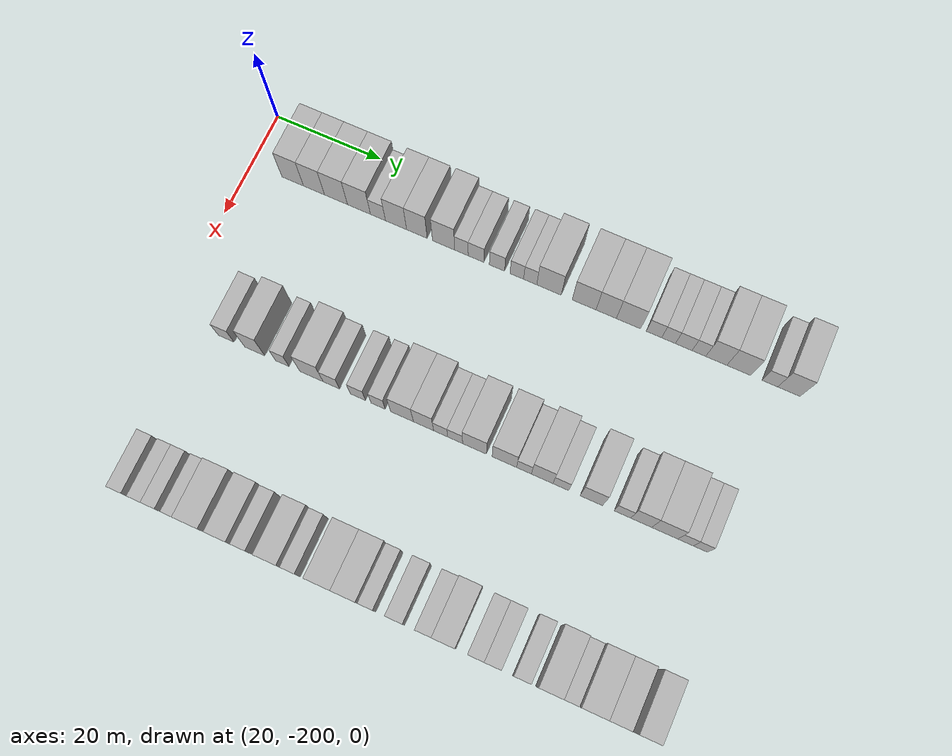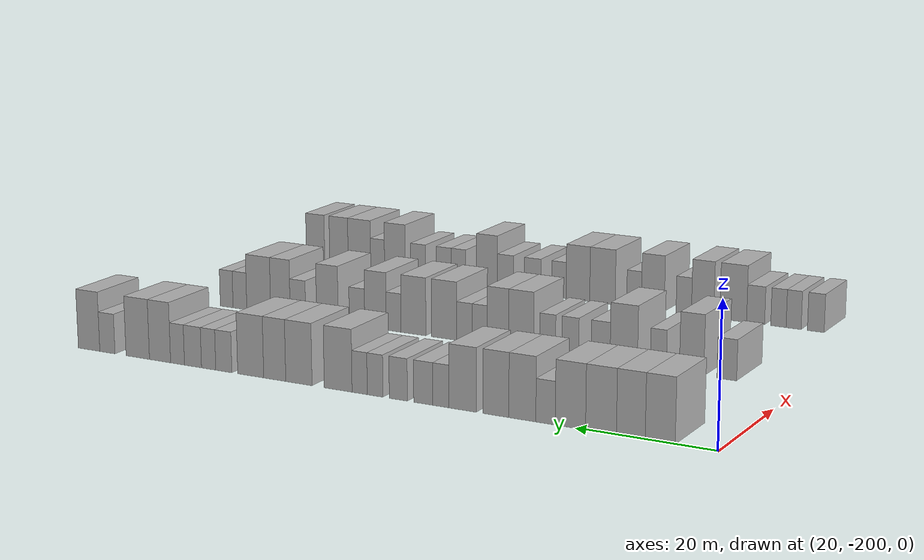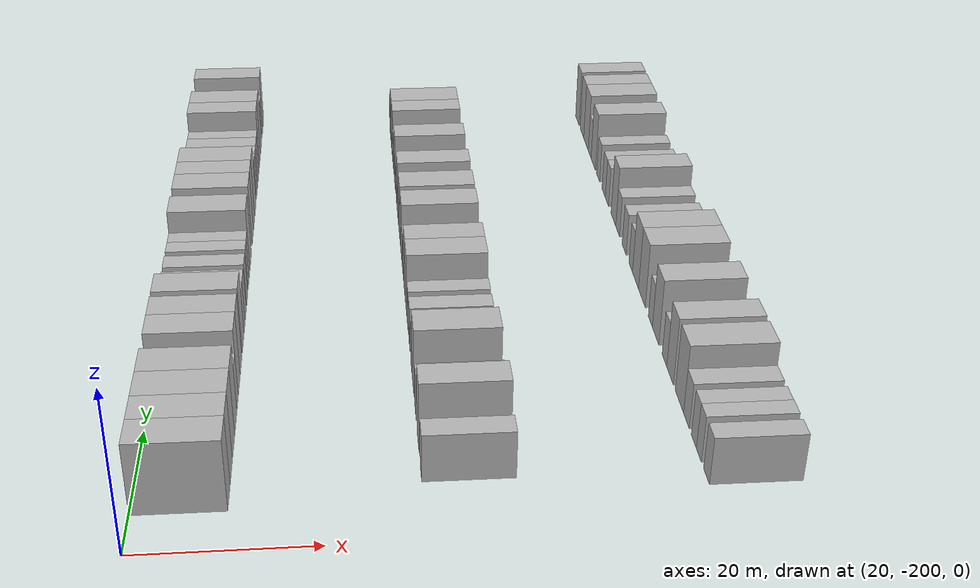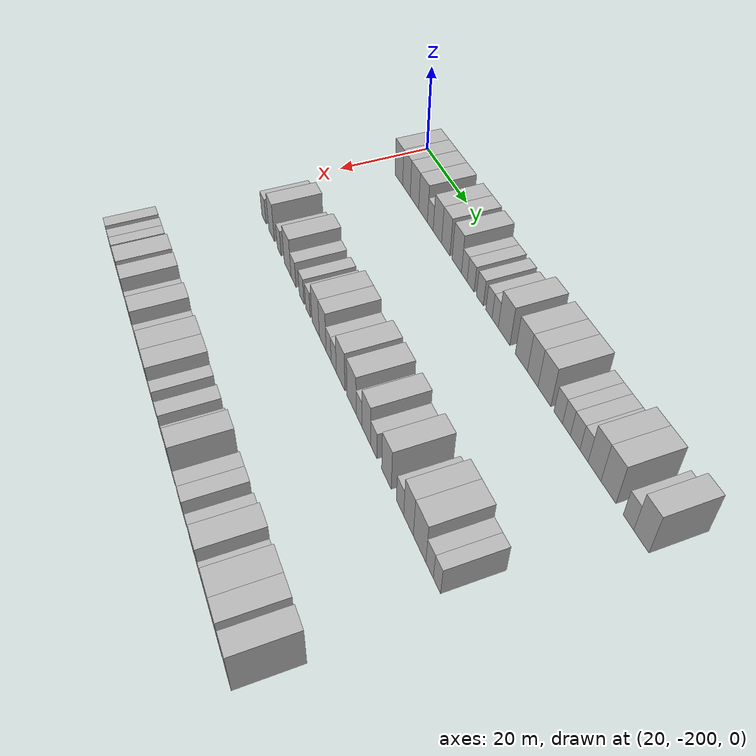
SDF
<sdf version="1.6">
 <world name="default">
  <model name="building_23">
   <static>1</static>
   <pose>25.0000 -192.0048 0 0.000000 0.000000 0.000000</pose>
   <link name="link">
    <pose>0 0 4.50 0 0 0</pose>
    <collision name="collision"><geometry><box><size>10.0000 4.1742 9.0000</size></box></geometry></collision>
    <visual name="visual">
     <cast_shadows>0</cast_shadows>
     <geometry><box><size>10.0000 4.1742 9.0000</size></box></geometry>
     <material>
      <script>
       <uri>model://HANNAS_wall/materials/scripts</uri>
       <uri>model://HANNAS_wall/materials/textures</uri>
       <name>vrc/HANNAS_wall</name>
      </script>
     </material>
    </visual>
   </link>
  </model>
  <model name="building_24">
   <static>1</static>
   <pose>25.0000 -187.8908 0 0.000000 0.000000 0.000000</pose>
   <link name="link">
    <pose>0 0 4.50 0 0 0</pose>
    <collision name="collision"><geometry><box><size>10.0000 4.0538 9.0000</size></box></geometry></collision>
    <visual name="visual">
     <cast_shadows>0</cast_shadows>
     <geometry><box><size>10.0000 4.0538 9.0000</size></box></geometry>
     <material>
      <script>
       <uri>model://HANNAS_wall/materials/scripts</uri>
       <uri>model://HANNAS_wall/materials/textures</uri>
       <name>vrc/HANNAS_wall</name>
      </script>
     </material>
    </visual>
   </link>
  </model>
  <model name="building_25">
   <static>1</static>
   <pose>25.0000 -183.6626 0 0.000000 0.000000 0.000000</pose>
   <link name="link">
    <pose>0 0 4.50 0 0 0</pose>
    <collision name="collision"><geometry><box><size>10.0000 4.4026 9.0000</size></box></geometry></collision>
    <visual name="visual">
     <cast_shadows>0</cast_shadows>
     <geometry><box><size>10.0000 4.4026 9.0000</size></box></geometry>
     <material>
      <script>
       <uri>model://HANNAS_wall/materials/scripts</uri>
       <uri>model://HANNAS_wall/materials/textures</uri>
       <name>vrc/HANNAS_wall</name>
      </script>
     </material>
    </visual>
   </link>
  </model>
  <model name="building_26">
   <static>1</static>
   <pose>25.0000 -179.2650 0 0.000000 0.000000 0.000000</pose>
   <link name="link">
    <pose>0 0 4.50 0 0 0</pose>
    <collision name="collision"><geometry><box><size>10.0000 4.3926 9.0000</size></box></geometry></collision>
    <visual name="visual">
     <cast_shadows>0</cast_shadows>
     <geometry><box><size>10.0000 4.3926 9.0000</size></box></geometry>
     <material>
      <script>
       <uri>model://HANNAS_wall/materials/scripts</uri>
       <uri>model://HANNAS_wall/materials/textures</uri>
       <name>vrc/HANNAS_wall</name>
      </script>
     </material>
    </visual>
   </link>
  </model>
  <model name="building_27">
   <static>1</static>
   <pose>25.0000 -175.6454 0 0.000000 0.000000 0.000000</pose>
   <link name="link">
    <pose>0 0 3.00 0 0 0</pose>
    <collision name="collision"><geometry><box><size>10.0000 2.8465 6.0000</size></box></geometry></collision>
    <visual name="visual">
     <cast_shadows>0</cast_shadows>
     <geometry><box><size>10.0000 2.8465 6.0000</size></box></geometry>
     <material>
      <script>
       <uri>model://HANNAS_wall/materials/scripts</uri>
       <uri>model://HANNAS_wall/materials/textures</uri>
       <name>vrc/HANNAS_wall</name>
      </script>
     </material>
    </visual>
   </link>
  </model>
  <model name="building_28">
   <static>1</static>
   <pose>25.0000 -172.2202 0 0.000000 0.000000 0.000000</pose>
   <link name="link">
    <pose>0 0 4.50 0 0 0</pose>
    <collision name="collision"><geometry><box><size>10.0000 4.0040 9.0000</size></box></geometry></collision>
    <visual name="visual">
     <cast_shadows>0</cast_shadows>
     <geometry><box><size>10.0000 4.0040 9.0000</size></box></geometry>
     <material>
      <script>
       <uri>model://HANNAS_wall/materials/scripts</uri>
       <uri>model://HANNAS_wall/materials/textures</uri>
       <name>vrc/HANNAS_wall</name>
      </script>
     </material>
    </visual>
   </link>
  </model>
  <model name="building_29">
   <static>1</static>
   <pose>25.0000 -168.2735 0 0.000000 0.000000 0.000000</pose>
   <link name="link">
    <pose>0 0 4.50 0 0 0</pose>
    <collision name="collision"><geometry><box><size>10.0000 3.8893 9.0000</size></box></geometry></collision>
    <visual name="visual">
     <cast_shadows>0</cast_shadows>
     <geometry><box><size>10.0000 3.8893 9.0000</size></box></geometry>
     <material>
      <script>
       <uri>model://HANNAS_wall/materials/scripts</uri>
       <uri>model://HANNAS_wall/materials/textures</uri>
       <name>vrc/HANNAS_wall</name>
      </script>
     </material>
    </visual>
   </link>
  </model>
  <model name="building_30">
   <static>1</static>
   <pose>25.0000 -163.2446 0 0.000000 0.000000 0.000000</pose>
   <link name="link">
    <pose>0 0 4.50 0 0 0</pose>
    <collision name="collision"><geometry><box><size>10.0000 4.1687 9.0000</size></box></geometry></collision>
    <visual name="visual">
     <cast_shadows>0</cast_shadows>
     <geometry><box><size>10.0000 4.1687 9.0000</size></box></geometry>
     <material>
      <script>
       <uri>model://HANNAS_wall/materials/scripts</uri>
       <uri>model://HANNAS_wall/materials/textures</uri>
       <name>vrc/HANNAS_wall</name>
      </script>
     </material>
    </visual>
   </link>
  </model>
  <model name="building_31">
   <static>1</static>
   <pose>25.0000 -159.8994 0 0.000000 0.000000 0.000000</pose>
   <link name="link">
    <pose>0 0 3.00 0 0 0</pose>
    <collision name="collision"><geometry><box><size>10.0000 2.5216 6.0000</size></box></geometry></collision>
    <visual name="visual">
     <cast_shadows>0</cast_shadows>
     <geometry><box><size>10.0000 2.5216 6.0000</size></box></geometry>
     <material>
      <script>
       <uri>model://HANNAS_wall/materials/scripts</uri>
       <uri>model://HANNAS_wall/materials/textures</uri>
       <name>vrc/HANNAS_wall</name>
      </script>
     </material>
    </visual>
   </link>
  </model>
  <model name="building_32">
   <static>1</static>
   <pose>25.0000 -157.1717 0 0.000000 0.000000 0.000000</pose>
   <link name="link">
    <pose>0 0 3.00 0 0 0</pose>
    <collision name="collision"><geometry><box><size>10.0000 2.9339 6.0000</size></box></geometry></collision>
    <visual name="visual">
     <cast_shadows>0</cast_shadows>
     <geometry><box><size>10.0000 2.9339 6.0000</size></box></geometry>
     <material>
      <script>
       <uri>model://HANNAS_wall/materials/scripts</uri>
       <uri>model://HANNAS_wall/materials/textures</uri>
       <name>vrc/HANNAS_wall</name>
      </script>
     </material>
    </visual>
   </link>
  </model>
  <model name="building_33">
   <static>1</static>
   <pose>25.0000 -153.2829 0 0.000000 0.000000 0.000000</pose>
   <link name="link">
    <pose>0 0 3.00 0 0 0</pose>
    <collision name="collision"><geometry><box><size>10.0000 2.8436 6.0000</size></box></geometry></collision>
    <visual name="visual">
     <cast_shadows>0</cast_shadows>
     <geometry><box><size>10.0000 2.8436 6.0000</size></box></geometry>
     <material>
      <script>
       <uri>model://HANNAS_wall/materials/scripts</uri>
       <uri>model://HANNAS_wall/materials/textures</uri>
       <name>vrc/HANNAS_wall</name>
      </script>
     </material>
    </visual>
   </link>
  </model>
  <model name="building_34">
   <static>1</static>
   <pose>25.0000 -149.6134 0 0.000000 0.000000 0.000000</pose>
   <link name="link">
    <pose>0 0 3.00 0 0 0</pose>
    <collision name="collision"><geometry><box><size>10.0000 2.4956 6.0000</size></box></geometry></collision>
    <visual name="visual">
     <cast_shadows>0</cast_shadows>
     <geometry><box><size>10.0000 2.4956 6.0000</size></box></geometry>
     <material>
      <script>
       <uri>model://HANNAS_wall/materials/scripts</uri>
       <uri>model://HANNAS_wall/materials/textures</uri>
       <name>vrc/HANNAS_wall</name>
      </script>
     </material>
    </visual>
   </link>
  </model>
  <model name="building_35">
   <static>1</static>
   <pose>25.0000 -147.1456 0 0.000000 0.000000 0.000000</pose>
   <link name="link">
    <pose>0 0 3.00 0 0 0</pose>
    <collision name="collision"><geometry><box><size>10.0000 2.4400 6.0000</size></box></geometry></collision>
    <visual name="visual">
     <cast_shadows>0</cast_shadows>
     <geometry><box><size>10.0000 2.4400 6.0000</size></box></geometry>
     <material>
      <script>
       <uri>model://HANNAS_wall/materials/scripts</uri>
       <uri>model://HANNAS_wall/materials/textures</uri>
       <name>vrc/HANNAS_wall</name>
      </script>
     </material>
    </visual>
   </link>
  </model>
  <model name="building_36">
   <static>1</static>
   <pose>25.0000 -143.6759 0 0.000000 0.000000 0.000000</pose>
   <link name="link">
    <pose>0 0 4.50 0 0 0</pose>
    <collision name="collision"><geometry><box><size>10.0000 4.4996 9.0000</size></box></geometry></collision>
    <visual name="visual">
     <cast_shadows>0</cast_shadows>
     <geometry><box><size>10.0000 4.4996 9.0000</size></box></geometry>
     <material>
      <script>
       <uri>model://HANNAS_wall/materials/scripts</uri>
       <uri>model://HANNAS_wall/materials/textures</uri>
       <name>vrc/HANNAS_wall</name>
      </script>
     </material>
    </visual>
   </link>
  </model>
  <model name="building_37">
   <static>1</static>
   <pose>25.0000 -137.2518 0 0.000000 0.000000 0.000000</pose>
   <link name="link">
    <pose>0 0 4.50 0 0 0</pose>
    <collision name="collision"><geometry><box><size>10.0000 4.3485 9.0000</size></box></geometry></collision>
    <visual name="visual">
     <cast_shadows>0</cast_shadows>
     <geometry><box><size>10.0000 4.3485 9.0000</size></box></geometry>
     <material>
      <script>
       <uri>model://HANNAS_wall/materials/scripts</uri>
       <uri>model://HANNAS_wall/materials/textures</uri>
       <name>vrc/HANNAS_wall</name>
      </script>
     </material>
    </visual>
   </link>
  </model>
  <model name="building_38">
   <static>1</static>
   <pose>25.0000 -133.2338 0 0.000000 0.000000 0.000000</pose>
   <link name="link">
    <pose>0 0 4.50 0 0 0</pose>
    <collision name="collision"><geometry><box><size>10.0000 3.6876 9.0000</size></box></geometry></collision>
    <visual name="visual">
     <cast_shadows>0</cast_shadows>
     <geometry><box><size>10.0000 3.6876 9.0000</size></box></geometry>
     <material>
      <script>
       <uri>model://HANNAS_wall/materials/scripts</uri>
       <uri>model://HANNAS_wall/materials/textures</uri>
       <name>vrc/HANNAS_wall</name>
      </script>
     </material>
    </visual>
   </link>
  </model>
  <model name="building_39">
   <static>1</static>
   <pose>25.0000 -129.1908 0 0.000000 0.000000 0.000000</pose>
   <link name="link">
    <pose>0 0 4.50 0 0 0</pose>
    <collision name="collision"><geometry><box><size>10.0000 4.3983 9.0000</size></box></geometry></collision>
    <visual name="visual">
     <cast_shadows>0</cast_shadows>
     <geometry><box><size>10.0000 4.3983 9.0000</size></box></geometry>
     <material>
      <script>
       <uri>model://HANNAS_wall/materials/scripts</uri>
       <uri>model://HANNAS_wall/materials/textures</uri>
       <name>vrc/HANNAS_wall</name>
      </script>
     </material>
    </visual>
   </link>
  </model>
  <model name="building_40">
   <static>1</static>
   <pose>25.0000 -124.6098 0 0.000000 0.000000 0.000000</pose>
   <link name="link">
    <pose>0 0 3.00 0 0 0</pose>
    <collision name="collision"><geometry><box><size>10.0000 2.7636 6.0000</size></box></geometry></collision>
    <visual name="visual">
     <cast_shadows>0</cast_shadows>
     <geometry><box><size>10.0000 2.7636 6.0000</size></box></geometry>
     <material>
      <script>
       <uri>model://HANNAS_wall/materials/scripts</uri>
       <uri>model://HANNAS_wall/materials/textures</uri>
       <name>vrc/HANNAS_wall</name>
      </script>
     </material>
    </visual>
   </link>
  </model>
  <model name="building_41">
   <static>1</static>
   <pose>25.0000 -121.9932 0 0.000000 0.000000 0.000000</pose>
   <link name="link">
    <pose>0 0 3.00 0 0 0</pose>
    <collision name="collision"><geometry><box><size>10.0000 2.4697 6.0000</size></box></geometry></collision>
    <visual name="visual">
     <cast_shadows>0</cast_shadows>
     <geometry><box><size>10.0000 2.4697 6.0000</size></box></geometry>
     <material>
      <script>
       <uri>model://HANNAS_wall/materials/scripts</uri>
       <uri>model://HANNAS_wall/materials/textures</uri>
       <name>vrc/HANNAS_wall</name>
      </script>
     </material>
    </visual>
   </link>
  </model>
  <model name="building_42">
   <static>1</static>
   <pose>25.0000 -119.2757 0 0.000000 0.000000 0.000000</pose>
   <link name="link">
    <pose>0 0 3.00 0 0 0</pose>
    <collision name="collision"><geometry><box><size>10.0000 2.9653 6.0000</size></box></geometry></collision>
    <visual name="visual">
     <cast_shadows>0</cast_shadows>
     <geometry><box><size>10.0000 2.9653 6.0000</size></box></geometry>
     <material>
      <script>
       <uri>model://HANNAS_wall/materials/scripts</uri>
       <uri>model://HANNAS_wall/materials/textures</uri>
       <name>vrc/HANNAS_wall</name>
      </script>
     </material>
    </visual>
   </link>
  </model>
  <model name="building_43">
   <static>1</static>
   <pose>25.0000 -116.5713 0 0.000000 0.000000 0.000000</pose>
   <link name="link">
    <pose>0 0 3.00 0 0 0</pose>
    <collision name="collision"><geometry><box><size>10.0000 2.4435 6.0000</size></box></geometry></collision>
    <visual name="visual">
     <cast_shadows>0</cast_shadows>
     <geometry><box><size>10.0000 2.4435 6.0000</size></box></geometry>
     <material>
      <script>
       <uri>model://HANNAS_wall/materials/scripts</uri>
       <uri>model://HANNAS_wall/materials/textures</uri>
       <name>vrc/HANNAS_wall</name>
      </script>
     </material>
    </visual>
   </link>
  </model>
  <model name="building_44">
   <static>1</static>
   <pose>25.0000 -113.4763 0 0.000000 0.000000 0.000000</pose>
   <link name="link">
    <pose>0 0 4.50 0 0 0</pose>
    <collision name="collision"><geometry><box><size>10.0000 3.7466 9.0000</size></box></geometry></collision>
    <visual name="visual">
     <cast_shadows>0</cast_shadows>
     <geometry><box><size>10.0000 3.7466 9.0000</size></box></geometry>
     <material>
      <script>
       <uri>model://HANNAS_wall/materials/scripts</uri>
       <uri>model://HANNAS_wall/materials/textures</uri>
       <name>vrc/HANNAS_wall</name>
      </script>
     </material>
    </visual>
   </link>
  </model>
  <model name="building_45">
   <static>1</static>
   <pose>25.0000 -109.5024 0 0.000000 0.000000 0.000000</pose>
   <link name="link">
    <pose>0 0 4.50 0 0 0</pose>
    <collision name="collision"><geometry><box><size>10.0000 4.2012 9.0000</size></box></geometry></collision>
    <visual name="visual">
     <cast_shadows>0</cast_shadows>
     <geometry><box><size>10.0000 4.2012 9.0000</size></box></geometry>
     <material>
      <script>
       <uri>model://HANNAS_wall/materials/scripts</uri>
       <uri>model://HANNAS_wall/materials/textures</uri>
       <name>vrc/HANNAS_wall</name>
      </script>
     </material>
    </visual>
   </link>
  </model>
  <model name="building_46">
   <static>1</static>
   <pose>25.0000 -104.0156 0 0.000000 0.000000 0.000000</pose>
   <link name="link">
    <pose>0 0 3.00 0 0 0</pose>
    <collision name="collision"><geometry><box><size>10.0000 2.7725 6.0000</size></box></geometry></collision>
    <visual name="visual">
     <cast_shadows>0</cast_shadows>
     <geometry><box><size>10.0000 2.7725 6.0000</size></box></geometry>
     <material>
      <script>
       <uri>model://HANNAS_wall/materials/scripts</uri>
       <uri>model://HANNAS_wall/materials/textures</uri>
       <name>vrc/HANNAS_wall</name>
      </script>
     </material>
    </visual>
   </link>
  </model>
  <model name="building_47">
   <static>1</static>
   <pose>25.0000 -100.6625 0 0.000000 0.000000 0.000000</pose>
   <link name="link">
    <pose>0 0 4.50 0 0 0</pose>
    <collision name="collision"><geometry><box><size>10.0000 3.9337 9.0000</size></box></geometry></collision>
    <visual name="visual">
     <cast_shadows>0</cast_shadows>
     <geometry><box><size>10.0000 3.9337 9.0000</size></box></geometry>
     <material>
      <script>
       <uri>model://HANNAS_wall/materials/scripts</uri>
       <uri>model://HANNAS_wall/materials/textures</uri>
       <name>vrc/HANNAS_wall</name>
      </script>
     </material>
    </visual>
   </link>
  </model>
  <model name="building_168">
   <static>1</static>
   <pose>55.0000 -189.3088 0 0.000000 0.000000 0.000000</pose>
   <link name="link">
    <pose>0 0 3.00 0 0 0</pose>
    <collision name="collision"><geometry><box><size>10.0000 2.9495 6.0000</size></box></geometry></collision>
    <visual name="visual">
     <cast_shadows>0</cast_shadows>
     <geometry><box><size>10.0000 2.9495 6.0000</size></box></geometry>
     <material>
      <script>
       <uri>model://HANNAS_wall/materials/scripts</uri>
       <uri>model://HANNAS_wall/materials/textures</uri>
       <name>vrc/HANNAS_wall</name>
      </script>
     </material>
    </visual>
   </link>
  </model>
  <model name="building_169">
   <static>1</static>
   <pose>55.0000 -183.9680 0 0.000000 0.000000 0.000000</pose>
   <link name="link">
    <pose>0 0 4.50 0 0 0</pose>
    <collision name="collision"><geometry><box><size>10.0000 3.7320 9.0000</size></box></geometry></collision>
    <visual name="visual">
     <cast_shadows>0</cast_shadows>
     <geometry><box><size>10.0000 3.7320 9.0000</size></box></geometry>
     <material>
      <script>
       <uri>model://HANNAS_wall/materials/scripts</uri>
       <uri>model://HANNAS_wall/materials/textures</uri>
       <name>vrc/HANNAS_wall</name>
      </script>
     </material>
    </visual>
   </link>
  </model>
  <model name="building_170">
   <static>1</static>
   <pose>55.0000 -178.8555 0 0.000000 0.000000 0.000000</pose>
   <link name="link">
    <pose>0 0 3.00 0 0 0</pose>
    <collision name="collision"><geometry><box><size>10.0000 2.4930 6.0000</size></box></geometry></collision>
    <visual name="visual">
     <cast_shadows>0</cast_shadows>
     <geometry><box><size>10.0000 2.4930 6.0000</size></box></geometry>
     <material>
      <script>
       <uri>model://HANNAS_wall/materials/scripts</uri>
       <uri>model://HANNAS_wall/materials/textures</uri>
       <name>vrc/HANNAS_wall</name>
      </script>
     </material>
    </visual>
   </link>
  </model>
  <model name="building_171">
   <static>1</static>
   <pose>55.0000 -173.4488 0 0.000000 0.000000 0.000000</pose>
   <link name="link">
    <pose>0 0 4.50 0 0 0</pose>
    <collision name="collision"><geometry><box><size>10.0000 4.3204 9.0000</size></box></geometry></collision>
    <visual name="visual">
     <cast_shadows>0</cast_shadows>
     <geometry><box><size>10.0000 4.3204 9.0000</size></box></geometry>
     <material>
      <script>
       <uri>model://HANNAS_wall/materials/scripts</uri>
       <uri>model://HANNAS_wall/materials/textures</uri>
       <name>vrc/HANNAS_wall</name>
      </script>
     </material>
    </visual>
   </link>
  </model>
  <model name="building_172">
   <static>1</static>
   <pose>55.0000 -169.7911 0 0.000000 0.000000 0.000000</pose>
   <link name="link">
    <pose>0 0 3.00 0 0 0</pose>
    <collision name="collision"><geometry><box><size>10.0000 2.9949 6.0000</size></box></geometry></collision>
    <visual name="visual">
     <cast_shadows>0</cast_shadows>
     <geometry><box><size>10.0000 2.9949 6.0000</size></box></geometry>
     <material>
      <script>
       <uri>model://HANNAS_wall/materials/scripts</uri>
       <uri>model://HANNAS_wall/materials/textures</uri>
       <name>vrc/HANNAS_wall</name>
      </script>
     </material>
    </visual>
   </link>
  </model>
  <model name="building_173">
   <static>1</static>
   <pose>55.0000 -164.9147 0 0.000000 0.000000 0.000000</pose>
   <link name="link">
    <pose>0 0 3.00 0 0 0</pose>
    <collision name="collision"><geometry><box><size>10.0000 2.7580 6.0000</size></box></geometry></collision>
    <visual name="visual">
     <cast_shadows>0</cast_shadows>
     <geometry><box><size>10.0000 2.7580 6.0000</size></box></geometry>
     <material>
      <script>
       <uri>model://HANNAS_wall/materials/scripts</uri>
       <uri>model://HANNAS_wall/materials/textures</uri>
       <name>vrc/HANNAS_wall</name>
      </script>
     </material>
    </visual>
   </link>
  </model>
  <model name="building_174">
   <static>1</static>
   <pose>55.0000 -161.2440 0 0.000000 0.000000 0.000000</pose>
   <link name="link">
    <pose>0 0 3.00 0 0 0</pose>
    <collision name="collision"><geometry><box><size>10.0000 2.5833 6.0000</size></box></geometry></collision>
    <visual name="visual">
     <cast_shadows>0</cast_shadows>
     <geometry><box><size>10.0000 2.5833 6.0000</size></box></geometry>
     <material>
      <script>
       <uri>model://HANNAS_wall/materials/scripts</uri>
       <uri>model://HANNAS_wall/materials/textures</uri>
       <name>vrc/HANNAS_wall</name>
      </script>
     </material>
    </visual>
   </link>
  </model>
  <model name="building_175">
   <static>1</static>
   <pose>55.0000 -156.9053 0 0.000000 0.000000 0.000000</pose>
   <link name="link">
    <pose>0 0 4.50 0 0 0</pose>
    <collision name="collision"><geometry><box><size>10.0000 4.0942 9.0000</size></box></geometry></collision>
    <visual name="visual">
     <cast_shadows>0</cast_shadows>
     <geometry><box><size>10.0000 4.0942 9.0000</size></box></geometry>
     <material>
      <script>
       <uri>model://HANNAS_wall/materials/scripts</uri>
       <uri>model://HANNAS_wall/materials/textures</uri>
       <name>vrc/HANNAS_wall</name>
      </script>
     </material>
    </visual>
   </link>
  </model>
  <model name="building_176">
   <static>1</static>
   <pose>55.0000 -153.0446 0 0.000000 0.000000 0.000000</pose>
   <link name="link">
    <pose>0 0 4.50 0 0 0</pose>
    <collision name="collision"><geometry><box><size>10.0000 3.6272 9.0000</size></box></geometry></collision>
    <visual name="visual">
     <cast_shadows>0</cast_shadows>
     <geometry><box><size>10.0000 3.6272 9.0000</size></box></geometry>
     <material>
      <script>
       <uri>model://HANNAS_wall/materials/scripts</uri>
       <uri>model://HANNAS_wall/materials/textures</uri>
       <name>vrc/HANNAS_wall</name>
      </script>
     </material>
    </visual>
   </link>
  </model>
  <model name="building_177">
   <static>1</static>
   <pose>55.0000 -149.9741 0 0.000000 0.000000 0.000000</pose>
   <link name="link">
    <pose>0 0 3.00 0 0 0</pose>
    <collision name="collision"><geometry><box><size>10.0000 2.5138 6.0000</size></box></geometry></collision>
    <visual name="visual">
     <cast_shadows>0</cast_shadows>
     <geometry><box><size>10.0000 2.5138 6.0000</size></box></geometry>
     <material>
      <script>
       <uri>model://HANNAS_wall/materials/scripts</uri>
       <uri>model://HANNAS_wall/materials/textures</uri>
       <name>vrc/HANNAS_wall</name>
      </script>
     </material>
    </visual>
   </link>
  </model>
  <model name="building_178">
   <static>1</static>
   <pose>55.0000 -147.3790 0 0.000000 0.000000 0.000000</pose>
   <link name="link">
    <pose>0 0 3.00 0 0 0</pose>
    <collision name="collision"><geometry><box><size>10.0000 2.6764 6.0000</size></box></geometry></collision>
    <visual name="visual">
     <cast_shadows>0</cast_shadows>
     <geometry><box><size>10.0000 2.6764 6.0000</size></box></geometry>
     <material>
      <script>
       <uri>model://HANNAS_wall/materials/scripts</uri>
       <uri>model://HANNAS_wall/materials/textures</uri>
       <name>vrc/HANNAS_wall</name>
      </script>
     </material>
    </visual>
   </link>
  </model>
  <model name="building_179">
   <static>1</static>
   <pose>55.0000 -143.9224 0 0.000000 0.000000 0.000000</pose>
   <link name="link">
    <pose>0 0 4.50 0 0 0</pose>
    <collision name="collision"><geometry><box><size>10.0000 4.2369 9.0000</size></box></geometry></collision>
    <visual name="visual">
     <cast_shadows>0</cast_shadows>
     <geometry><box><size>10.0000 4.2369 9.0000</size></box></geometry>
     <material>
      <script>
       <uri>model://HANNAS_wall/materials/scripts</uri>
       <uri>model://HANNAS_wall/materials/textures</uri>
       <name>vrc/HANNAS_wall</name>
      </script>
     </material>
    </visual>
   </link>
  </model>
  <model name="building_180">
   <static>1</static>
   <pose>55.0000 -138.6399 0 0.000000 0.000000 0.000000</pose>
   <link name="link">
    <pose>0 0 4.50 0 0 0</pose>
    <collision name="collision"><geometry><box><size>10.0000 4.3279 9.0000</size></box></geometry></collision>
    <visual name="visual">
     <cast_shadows>0</cast_shadows>
     <geometry><box><size>10.0000 4.3279 9.0000</size></box></geometry>
     <material>
      <script>
       <uri>model://HANNAS_wall/materials/scripts</uri>
       <uri>model://HANNAS_wall/materials/textures</uri>
       <name>vrc/HANNAS_wall</name>
      </script>
     </material>
    </visual>
   </link>
  </model>
  <model name="building_181">
   <static>1</static>
   <pose>55.0000 -135.1677 0 0.000000 0.000000 0.000000</pose>
   <link name="link">
    <pose>0 0 3.00 0 0 0</pose>
    <collision name="collision"><geometry><box><size>10.0000 2.6165 6.0000</size></box></geometry></collision>
    <visual name="visual">
     <cast_shadows>0</cast_shadows>
     <geometry><box><size>10.0000 2.6165 6.0000</size></box></geometry>
     <material>
      <script>
       <uri>model://HANNAS_wall/materials/scripts</uri>
       <uri>model://HANNAS_wall/materials/textures</uri>
       <name>vrc/HANNAS_wall</name>
      </script>
     </material>
    </visual>
   </link>
  </model>
  <model name="building_182">
   <static>1</static>
   <pose>55.0000 -131.9678 0 0.000000 0.000000 0.000000</pose>
   <link name="link">
    <pose>0 0 4.50 0 0 0</pose>
    <collision name="collision"><geometry><box><size>10.0000 3.7834 9.0000</size></box></geometry></collision>
    <visual name="visual">
     <cast_shadows>0</cast_shadows>
     <geometry><box><size>10.0000 3.7834 9.0000</size></box></geometry>
     <material>
      <script>
       <uri>model://HANNAS_wall/materials/scripts</uri>
       <uri>model://HANNAS_wall/materials/textures</uri>
       <name>vrc/HANNAS_wall</name>
      </script>
     </material>
    </visual>
   </link>
  </model>
  <model name="building_183">
   <static>1</static>
   <pose>55.0000 -128.6939 0 0.000000 0.000000 0.000000</pose>
   <link name="link">
    <pose>0 0 3.00 0 0 0</pose>
    <collision name="collision"><geometry><box><size>10.0000 2.7643 6.0000</size></box></geometry></collision>
    <visual name="visual">
     <cast_shadows>0</cast_shadows>
     <geometry><box><size>10.0000 2.7643 6.0000</size></box></geometry>
     <material>
      <script>
       <uri>model://HANNAS_wall/materials/scripts</uri>
       <uri>model://HANNAS_wall/materials/textures</uri>
       <name>vrc/HANNAS_wall</name>
      </script>
     </material>
    </visual>
   </link>
  </model>
  <model name="building_184">
   <static>1</static>
   <pose>55.0000 -123.3504 0 0.000000 0.000000 0.000000</pose>
   <link name="link">
    <pose>0 0 4.50 0 0 0</pose>
    <collision name="collision"><geometry><box><size>10.0000 3.9227 9.0000</size></box></geometry></collision>
    <visual name="visual">
     <cast_shadows>0</cast_shadows>
     <geometry><box><size>10.0000 3.9227 9.0000</size></box></geometry>
     <material>
      <script>
       <uri>model://HANNAS_wall/materials/scripts</uri>
       <uri>model://HANNAS_wall/materials/textures</uri>
       <name>vrc/HANNAS_wall</name>
      </script>
     </material>
    </visual>
   </link>
  </model>
  <model name="building_185">
   <static>1</static>
   <pose>55.0000 -117.9613 0 0.000000 0.000000 0.000000</pose>
   <link name="link">
    <pose>0 0 3.00 0 0 0</pose>
    <collision name="collision"><geometry><box><size>10.0000 2.8555 6.0000</size></box></geometry></collision>
    <visual name="visual">
     <cast_shadows>0</cast_shadows>
     <geometry><box><size>10.0000 2.8555 6.0000</size></box></geometry>
     <material>
      <script>
       <uri>model://HANNAS_wall/materials/scripts</uri>
       <uri>model://HANNAS_wall/materials/textures</uri>
       <name>vrc/HANNAS_wall</name>
      </script>
     </material>
    </visual>
   </link>
  </model>
  <model name="building_186">
   <static>1</static>
   <pose>55.0000 -114.7266 0 0.000000 0.000000 0.000000</pose>
   <link name="link">
    <pose>0 0 4.50 0 0 0</pose>
    <collision name="collision"><geometry><box><size>10.0000 3.6138 9.0000</size></box></geometry></collision>
    <visual name="visual">
     <cast_shadows>0</cast_shadows>
     <geometry><box><size>10.0000 3.6138 9.0000</size></box></geometry>
     <material>
      <script>
       <uri>model://HANNAS_wall/materials/scripts</uri>
       <uri>model://HANNAS_wall/materials/textures</uri>
       <name>vrc/HANNAS_wall</name>
      </script>
     </material>
    </visual>
   </link>
  </model>
  <model name="building_187">
   <static>1</static>
   <pose>55.0000 -110.6710 0 0.000000 0.000000 0.000000</pose>
   <link name="link">
    <pose>0 0 4.50 0 0 0</pose>
    <collision name="collision"><geometry><box><size>10.0000 4.4976 9.0000</size></box></geometry></collision>
    <visual name="visual">
     <cast_shadows>0</cast_shadows>
     <geometry><box><size>10.0000 4.4976 9.0000</size></box></geometry>
     <material>
      <script>
       <uri>model://HANNAS_wall/materials/scripts</uri>
       <uri>model://HANNAS_wall/materials/textures</uri>
       <name>vrc/HANNAS_wall</name>
      </script>
     </material>
    </visual>
   </link>
  </model>
  <model name="building_188">
   <static>1</static>
   <pose>55.0000 -107.1189 0 0.000000 0.000000 0.000000</pose>
   <link name="link">
    <pose>0 0 3.00 0 0 0</pose>
    <collision name="collision"><geometry><box><size>10.0000 2.6065 6.0000</size></box></geometry></collision>
    <visual name="visual">
     <cast_shadows>0</cast_shadows>
     <geometry><box><size>10.0000 2.6065 6.0000</size></box></geometry>
     <material>
      <script>
       <uri>model://HANNAS_wall/materials/scripts</uri>
       <uri>model://HANNAS_wall/materials/textures</uri>
       <name>vrc/HANNAS_wall</name>
      </script>
     </material>
    </visual>
   </link>
  </model>
  <model name="building_189">
   <static>1</static>
   <pose>55.0000 -104.6003 0 0.000000 0.000000 0.000000</pose>
   <link name="link">
    <pose>0 0 3.00 0 0 0</pose>
    <collision name="collision"><geometry><box><size>10.0000 2.4308 6.0000</size></box></geometry></collision>
    <visual name="visual">
     <cast_shadows>0</cast_shadows>
     <geometry><box><size>10.0000 2.4308 6.0000</size></box></geometry>
     <material>
      <script>
       <uri>model://HANNAS_wall/materials/scripts</uri>
       <uri>model://HANNAS_wall/materials/textures</uri>
       <name>vrc/HANNAS_wall</name>
      </script>
     </material>
    </visual>
   </link>
  </model>
  <model name="building_307">
   <static>1</static>
   <pose>85.0000 -191.9324 0 0.000000 0.000000 0.000000</pose>
   <link name="link">
    <pose>0 0 3.00 0 0 0</pose>
    <collision name="collision"><geometry><box><size>10.0000 2.6694 6.0000</size></box></geometry></collision>
    <visual name="visual">
     <cast_shadows>0</cast_shadows>
     <geometry><box><size>10.0000 2.6694 6.0000</size></box></geometry>
     <material>
      <script>
       <uri>model://HANNAS_wall/materials/scripts</uri>
       <uri>model://HANNAS_wall/materials/textures</uri>
       <name>vrc/HANNAS_wall</name>
      </script>
     </material>
    </visual>
   </link>
  </model>
  <model name="building_308">
   <static>1</static>
   <pose>85.0000 -188.3894 0 0.000000 0.000000 0.000000</pose>
   <link name="link">
    <pose>0 0 3.00 0 0 0</pose>
    <collision name="collision"><geometry><box><size>10.0000 2.4168 6.0000</size></box></geometry></collision>
    <visual name="visual">
     <cast_shadows>0</cast_shadows>
     <geometry><box><size>10.0000 2.4168 6.0000</size></box></geometry>
     <material>
      <script>
       <uri>model://HANNAS_wall/materials/scripts</uri>
       <uri>model://HANNAS_wall/materials/textures</uri>
       <name>vrc/HANNAS_wall</name>
      </script>
     </material>
    </visual>
   </link>
  </model>
  <model name="building_309">
   <static>1</static>
   <pose>85.0000 -185.9385 0 0.000000 0.000000 0.000000</pose>
   <link name="link">
    <pose>0 0 3.00 0 0 0</pose>
    <collision name="collision"><geometry><box><size>10.0000 2.4849 6.0000</size></box></geometry></collision>
    <visual name="visual">
     <cast_shadows>0</cast_shadows>
     <geometry><box><size>10.0000 2.4849 6.0000</size></box></geometry>
     <material>
      <script>
       <uri>model://HANNAS_wall/materials/scripts</uri>
       <uri>model://HANNAS_wall/materials/textures</uri>
       <name>vrc/HANNAS_wall</name>
      </script>
     </material>
    </visual>
   </link>
  </model>
  <model name="building_310">
   <static>1</static>
   <pose>85.0000 -182.2205 0 0.000000 0.000000 0.000000</pose>
   <link name="link">
    <pose>0 0 3.00 0 0 0</pose>
    <collision name="collision"><geometry><box><size>10.0000 2.9511 6.0000</size></box></geometry></collision>
    <visual name="visual">
     <cast_shadows>0</cast_shadows>
     <geometry><box><size>10.0000 2.9511 6.0000</size></box></geometry>
     <material>
      <script>
       <uri>model://HANNAS_wall/materials/scripts</uri>
       <uri>model://HANNAS_wall/materials/textures</uri>
       <name>vrc/HANNAS_wall</name>
      </script>
     </material>
    </visual>
   </link>
  </model>
  <model name="building_311">
   <static>1</static>
   <pose>85.0000 -178.5359 0 0.000000 0.000000 0.000000</pose>
   <link name="link">
    <pose>0 0 4.50 0 0 0</pose>
    <collision name="collision"><geometry><box><size>10.0000 4.4180 9.0000</size></box></geometry></collision>
    <visual name="visual">
     <cast_shadows>0</cast_shadows>
     <geometry><box><size>10.0000 4.4180 9.0000</size></box></geometry>
     <material>
      <script>
       <uri>model://HANNAS_wall/materials/scripts</uri>
       <uri>model://HANNAS_wall/materials/textures</uri>
       <name>vrc/HANNAS_wall</name>
      </script>
     </material>
    </visual>
   </link>
  </model>
  <model name="building_312">
   <static>1</static>
   <pose>85.0000 -173.4516 0 0.000000 0.000000 0.000000</pose>
   <link name="link">
    <pose>0 0 4.50 0 0 0</pose>
    <collision name="collision"><geometry><box><size>10.0000 3.7505 9.0000</size></box></geometry></collision>
    <visual name="visual">
     <cast_shadows>0</cast_shadows>
     <geometry><box><size>10.0000 3.7505 9.0000</size></box></geometry>
     <material>
      <script>
       <uri>model://HANNAS_wall/materials/scripts</uri>
       <uri>model://HANNAS_wall/materials/textures</uri>
       <name>vrc/HANNAS_wall</name>
      </script>
     </material>
    </visual>
   </link>
  </model>
  <model name="building_313">
   <static>1</static>
   <pose>85.0000 -170.2796 0 0.000000 0.000000 0.000000</pose>
   <link name="link">
    <pose>0 0 3.00 0 0 0</pose>
    <collision name="collision"><geometry><box><size>10.0000 2.5936 6.0000</size></box></geometry></collision>
    <visual name="visual">
     <cast_shadows>0</cast_shadows>
     <geometry><box><size>10.0000 2.5936 6.0000</size></box></geometry>
     <material>
      <script>
       <uri>model://HANNAS_wall/materials/scripts</uri>
       <uri>model://HANNAS_wall/materials/textures</uri>
       <name>vrc/HANNAS_wall</name>
      </script>
     </material>
    </visual>
   </link>
  </model>
  <model name="building_314">
   <static>1</static>
   <pose>85.0000 -165.0097 0 0.000000 0.000000 0.000000</pose>
   <link name="link">
    <pose>0 0 4.50 0 0 0</pose>
    <collision name="collision"><geometry><box><size>10.0000 3.9460 9.0000</size></box></geometry></collision>
    <visual name="visual">
     <cast_shadows>0</cast_shadows>
     <geometry><box><size>10.0000 3.9460 9.0000</size></box></geometry>
     <material>
      <script>
       <uri>model://HANNAS_wall/materials/scripts</uri>
       <uri>model://HANNAS_wall/materials/textures</uri>
       <name>vrc/HANNAS_wall</name>
      </script>
     </material>
    </visual>
   </link>
  </model>
  <model name="building_315">
   <static>1</static>
   <pose>85.0000 -161.7745 0 0.000000 0.000000 0.000000</pose>
   <link name="link">
    <pose>0 0 3.00 0 0 0</pose>
    <collision name="collision"><geometry><box><size>10.0000 2.5244 6.0000</size></box></geometry></collision>
    <visual name="visual">
     <cast_shadows>0</cast_shadows>
     <geometry><box><size>10.0000 2.5244 6.0000</size></box></geometry>
     <material>
      <script>
       <uri>model://HANNAS_wall/materials/scripts</uri>
       <uri>model://HANNAS_wall/materials/textures</uri>
       <name>vrc/HANNAS_wall</name>
      </script>
     </material>
    </visual>
   </link>
  </model>
  <model name="building_316">
   <static>1</static>
   <pose>85.0000 -156.2794 0 0.000000 0.000000 0.000000</pose>
   <link name="link">
    <pose>0 0 4.50 0 0 0</pose>
    <collision name="collision"><geometry><box><size>10.0000 4.4659 9.0000</size></box></geometry></collision>
    <visual name="visual">
     <cast_shadows>0</cast_shadows>
     <geometry><box><size>10.0000 4.4659 9.0000</size></box></geometry>
     <material>
      <script>
       <uri>model://HANNAS_wall/materials/scripts</uri>
       <uri>model://HANNAS_wall/materials/textures</uri>
       <name>vrc/HANNAS_wall</name>
      </script>
     </material>
    </visual>
   </link>
  </model>
  <model name="building_317">
   <static>1</static>
   <pose>85.0000 -151.9526 0 0.000000 0.000000 0.000000</pose>
   <link name="link">
    <pose>0 0 4.50 0 0 0</pose>
    <collision name="collision"><geometry><box><size>10.0000 4.1878 9.0000</size></box></geometry></collision>
    <visual name="visual">
     <cast_shadows>0</cast_shadows>
     <geometry><box><size>10.0000 4.1878 9.0000</size></box></geometry>
     <material>
      <script>
       <uri>model://HANNAS_wall/materials/scripts</uri>
       <uri>model://HANNAS_wall/materials/textures</uri>
       <name>vrc/HANNAS_wall</name>
      </script>
     </material>
    </visual>
   </link>
  </model>
  <model name="building_318">
   <static>1</static>
   <pose>85.0000 -148.5845 0 0.000000 0.000000 0.000000</pose>
   <link name="link">
    <pose>0 0 3.00 0 0 0</pose>
    <collision name="collision"><geometry><box><size>10.0000 2.5485 6.0000</size></box></geometry></collision>
    <visual name="visual">
     <cast_shadows>0</cast_shadows>
     <geometry><box><size>10.0000 2.5485 6.0000</size></box></geometry>
     <material>
      <script>
       <uri>model://HANNAS_wall/materials/scripts</uri>
       <uri>model://HANNAS_wall/materials/textures</uri>
       <name>vrc/HANNAS_wall</name>
      </script>
     </material>
    </visual>
   </link>
  </model>
  <model name="building_319">
   <static>1</static>
   <pose>85.0000 -143.8209 0 0.000000 0.000000 0.000000</pose>
   <link name="link">
    <pose>0 0 3.00 0 0 0</pose>
    <collision name="collision"><geometry><box><size>10.0000 2.9786 6.0000</size></box></geometry></collision>
    <visual name="visual">
     <cast_shadows>0</cast_shadows>
     <geometry><box><size>10.0000 2.9786 6.0000</size></box></geometry>
     <material>
      <script>
       <uri>model://HANNAS_wall/materials/scripts</uri>
       <uri>model://HANNAS_wall/materials/textures</uri>
       <name>vrc/HANNAS_wall</name>
      </script>
     </material>
    </visual>
   </link>
  </model>
  <model name="building_320">
   <static>1</static>
   <pose>85.0000 -138.8755 0 0.000000 0.000000 0.000000</pose>
   <link name="link">
    <pose>0 0 3.00 0 0 0</pose>
    <collision name="collision"><geometry><box><size>10.0000 2.9124 6.0000</size></box></geometry></collision>
    <visual name="visual">
     <cast_shadows>0</cast_shadows>
     <geometry><box><size>10.0000 2.9124 6.0000</size></box></geometry>
     <material>
      <script>
       <uri>model://HANNAS_wall/materials/scripts</uri>
       <uri>model://HANNAS_wall/materials/textures</uri>
       <name>vrc/HANNAS_wall</name>
      </script>
     </material>
    </visual>
   </link>
  </model>
  <model name="building_321">
   <static>1</static>
   <pose>85.0000 -135.4884 0 0.000000 0.000000 0.000000</pose>
   <link name="link">
    <pose>0 0 4.50 0 0 0</pose>
    <collision name="collision"><geometry><box><size>10.0000 3.8619 9.0000</size></box></geometry></collision>
    <visual name="visual">
     <cast_shadows>0</cast_shadows>
     <geometry><box><size>10.0000 3.8619 9.0000</size></box></geometry>
     <material>
      <script>
       <uri>model://HANNAS_wall/materials/scripts</uri>
       <uri>model://HANNAS_wall/materials/textures</uri>
       <name>vrc/HANNAS_wall</name>
      </script>
     </material>
    </visual>
   </link>
  </model>
  <model name="building_322">
   <static>1</static>
   <pose>85.0000 -130.1819 0 0.000000 0.000000 0.000000</pose>
   <link name="link">
    <pose>0 0 3.00 0 0 0</pose>
    <collision name="collision"><geometry><box><size>10.0000 2.7511 6.0000</size></box></geometry></collision>
    <visual name="visual">
     <cast_shadows>0</cast_shadows>
     <geometry><box><size>10.0000 2.7511 6.0000</size></box></geometry>
     <material>
      <script>
       <uri>model://HANNAS_wall/materials/scripts</uri>
       <uri>model://HANNAS_wall/materials/textures</uri>
       <name>vrc/HANNAS_wall</name>
      </script>
     </material>
    </visual>
   </link>
  </model>
  <model name="building_323">
   <static>1</static>
   <pose>85.0000 -127.3780 0 0.000000 0.000000 0.000000</pose>
   <link name="link">
    <pose>0 0 3.00 0 0 0</pose>
    <collision name="collision"><geometry><box><size>10.0000 2.8566 6.0000</size></box></geometry></collision>
    <visual name="visual">
     <cast_shadows>0</cast_shadows>
     <geometry><box><size>10.0000 2.8566 6.0000</size></box></geometry>
     <material>
      <script>
       <uri>model://HANNAS_wall/materials/scripts</uri>
       <uri>model://HANNAS_wall/materials/textures</uri>
       <name>vrc/HANNAS_wall</name>
      </script>
     </material>
    </visual>
   </link>
  </model>
  <model name="building_324">
   <static>1</static>
   <pose>85.0000 -122.5234 0 0.000000 0.000000 0.000000</pose>
   <link name="link">
    <pose>0 0 3.00 0 0 0</pose>
    <collision name="collision"><geometry><box><size>10.0000 2.8525 6.0000</size></box></geometry></collision>
    <visual name="visual">
     <cast_shadows>0</cast_shadows>
     <geometry><box><size>10.0000 2.8525 6.0000</size></box></geometry>
     <material>
      <script>
       <uri>model://HANNAS_wall/materials/scripts</uri>
       <uri>model://HANNAS_wall/materials/textures</uri>
       <name>vrc/HANNAS_wall</name>
      </script>
     </material>
    </visual>
   </link>
  </model>
  <model name="building_325">
   <static>1</static>
   <pose>85.0000 -118.0753 0 0.000000 0.000000 0.000000</pose>
   <link name="link">
    <pose>0 0 4.50 0 0 0</pose>
    <collision name="collision"><geometry><box><size>10.0000 4.0438 9.0000</size></box></geometry></collision>
    <visual name="visual">
     <cast_shadows>0</cast_shadows>
     <geometry><box><size>10.0000 4.0438 9.0000</size></box></geometry>
     <material>
      <script>
       <uri>model://HANNAS_wall/materials/scripts</uri>
       <uri>model://HANNAS_wall/materials/textures</uri>
       <name>vrc/HANNAS_wall</name>
      </script>
     </material>
    </visual>
   </link>
  </model>
  <model name="building_326">
   <static>1</static>
   <pose>85.0000 -114.6848 0 0.000000 0.000000 0.000000</pose>
   <link name="link">
    <pose>0 0 3.00 0 0 0</pose>
    <collision name="collision"><geometry><box><size>10.0000 2.7373 6.0000</size></box></geometry></collision>
    <visual name="visual">
     <cast_shadows>0</cast_shadows>
     <geometry><box><size>10.0000 2.7373 6.0000</size></box></geometry>
     <material>
      <script>
       <uri>model://HANNAS_wall/materials/scripts</uri>
       <uri>model://HANNAS_wall/materials/textures</uri>
       <name>vrc/HANNAS_wall</name>
      </script>
     </material>
    </visual>
   </link>
  </model>
  <model name="building_327">
   <static>1</static>
   <pose>85.0000 -111.1173 0 0.000000 0.000000 0.000000</pose>
   <link name="link">
    <pose>0 0 4.50 0 0 0</pose>
    <collision name="collision"><geometry><box><size>10.0000 4.3977 9.0000</size></box></geometry></collision>
    <visual name="visual">
     <cast_shadows>0</cast_shadows>
     <geometry><box><size>10.0000 4.3977 9.0000</size></box></geometry>
     <material>
      <script>
       <uri>model://HANNAS_wall/materials/scripts</uri>
       <uri>model://HANNAS_wall/materials/textures</uri>
       <name>vrc/HANNAS_wall</name>
      </script>
     </material>
    </visual>
   </link>
  </model>
  <model name="building_328">
   <static>1</static>
   <pose>85.0000 -107.0863 0 0.000000 0.000000 0.000000</pose>
   <link name="link">
    <pose>0 0 4.50 0 0 0</pose>
    <collision name="collision"><geometry><box><size>10.0000 3.6643 9.0000</size></box></geometry></collision>
    <visual name="visual">
     <cast_shadows>0</cast_shadows>
     <geometry><box><size>10.0000 3.6643 9.0000</size></box></geometry>
     <material>
      <script>
       <uri>model://HANNAS_wall/materials/scripts</uri>
       <uri>model://HANNAS_wall/materials/textures</uri>
       <name>vrc/HANNAS_wall</name>
      </script>
     </material>
    </visual>
   </link>
  </model>
  <model name="building_329">
   <static>1</static>
   <pose>85.0000 -102.4184 0 0.000000 0.000000 0.000000</pose>
   <link name="link">
    <pose>0 0 4.50 0 0 0</pose>
    <collision name="collision"><geometry><box><size>10.0000 3.6713 9.0000</size></box></geometry></collision>
    <visual name="visual">
     <cast_shadows>0</cast_shadows>
     <geometry><box><size>10.0000 3.6713 9.0000</size></box></geometry>
     <material>
      <script>
       <uri>model://HANNAS_wall/materials/scripts</uri>
       <uri>model://HANNAS_wall/materials/textures</uri>
       <name>vrc/HANNAS_wall</name>
      </script>
     </material>
    </visual>
   </link>
  </model>
 </world>
</sdf>
